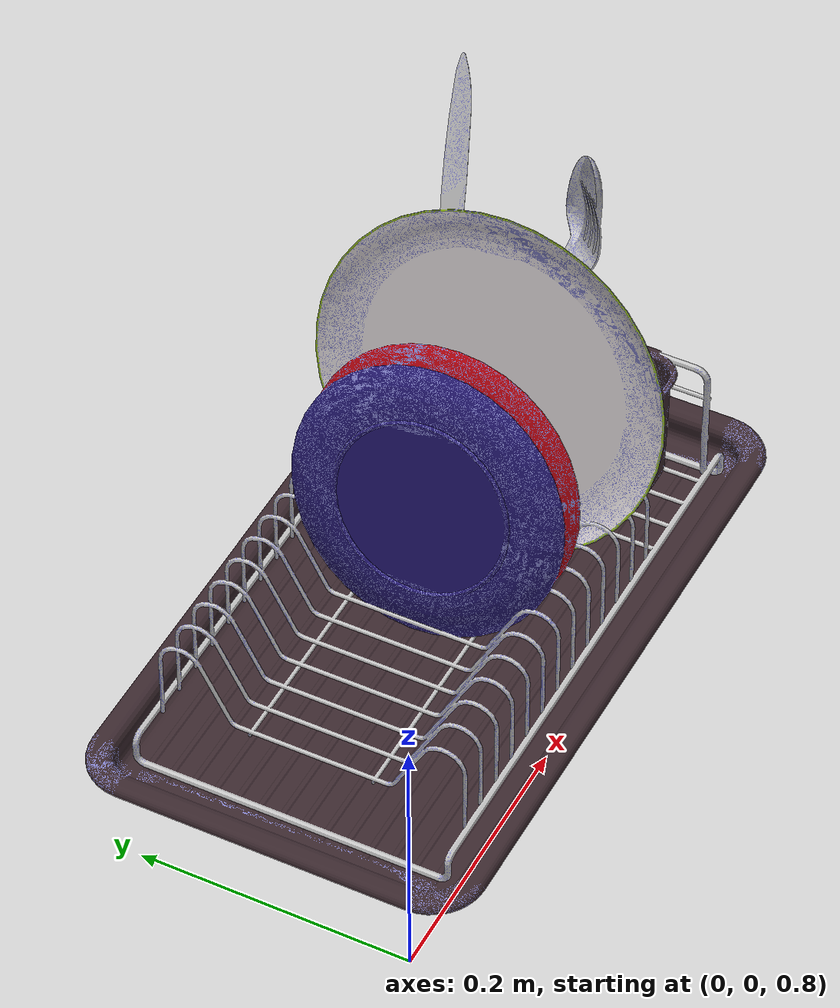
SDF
<?xml version="1.0" ?>
<sdf version="1.6">
  <model name="dish_washer">
    <static>1</static>  <!-- Set to 1 if the object should not fall -->
    <link name="link">
      <pose>0 0 0.74 0 0 0</pose>  <!-- Initial pose (XYZ + RPY) -->

      <visual name="visual">
        <geometry>
          <mesh>
            <uri>model://dish_washer/meshes/model.dae</uri>
            <scale>1 1 1</scale>
          </mesh>
        </geometry>
      </visual>

      <collision name="collision">
        <laser_retro>0</laser_retro>
        <max_contacts>20</max_contacts>
        <geometry>
          <mesh>
            <uri>model://dish_washer/meshes/model.dae</uri>
            <scale>1 1 1</scale>
          </mesh>
        </geometry>
        <surface>
          <contact>
            <ode>
              <kp>1e7</kp>
              <kd>1.0</kd>
              <max_vel>0.2</max_vel>
              <min_depth>0.5</min_depth>
            </ode>
          </contact>
          <friction>
            <ode>
              <mu>0.6</mu>
              <mu2>0.6</mu2>
            </ode>
          </friction>
        </surface>
      </collision>

      <inertial auto="true"/>
    </link>
  </model>
</sdf>
